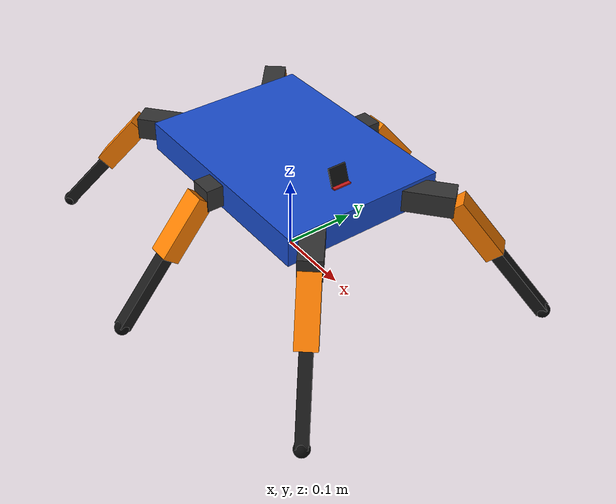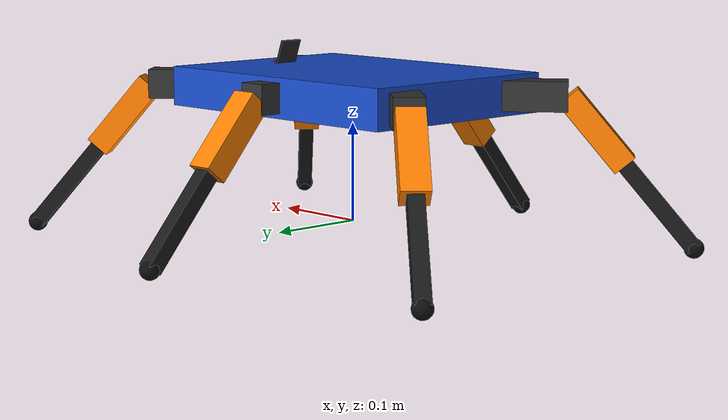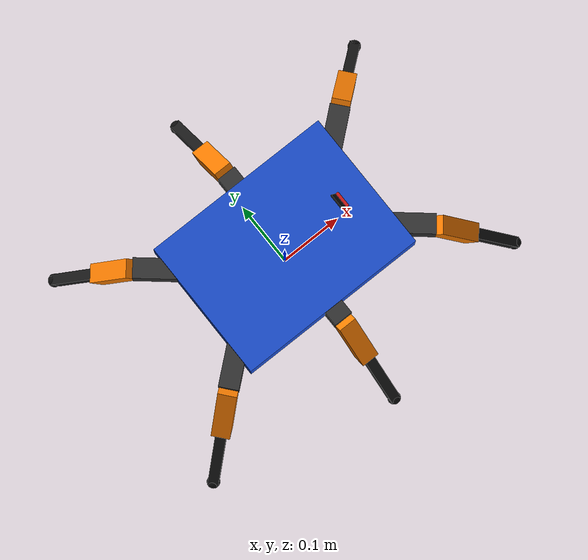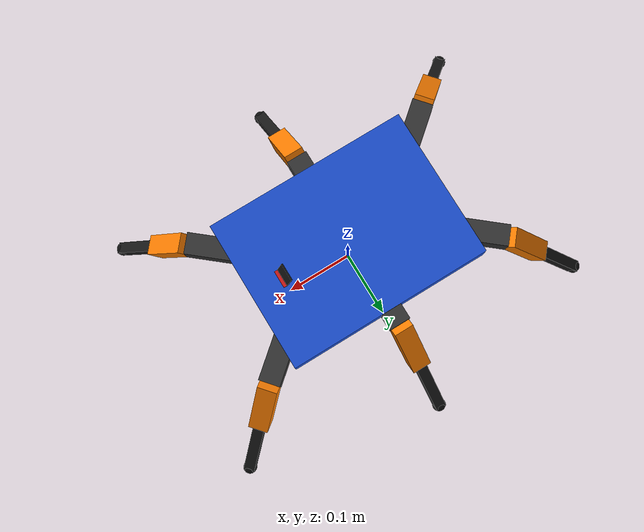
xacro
<?xml version="1.0"?>
<robot name="hexapod" xmlns:xacro="http://www.ros.org/wiki/xacro">

  <!-- Path to ros2_controllers.yaml, injected by the launch file so the
       gz_ros2_control plugin can find it at spawn time. -->
  <xacro:arg name="controllers_file" default=""/>
  <xacro:arg name="use_meshes" default="false"/>
  <!-- Set false for a plain URDF with no Gazebo / ros2_control tags. -->
  <xacro:arg name="simulation" default="true"/>

  <xacro:include filename="$(find hexapod_description)/urdf/common.xacro"/>
  <xacro:include filename="$(find hexapod_description)/urdf/leg.xacro"/>
  <xacro:include filename="$(find hexapod_description)/urdf/sensors.xacro"/>
  <xacro:include filename="$(find hexapod_description)/urdf/hexapod.ros2_control.xacro"/>

  <!-- ==================== body ==================== -->

  <!-- Massless root. Gazebo wants an inertia-free link at the root of a
       floating-base tree, otherwise the base picks up a phantom mass. -->
  <link name="base_footprint"/>

  <joint name="base_joint" type="fixed">
    <parent link="base_footprint"/>
    <child link="base_link"/>
    <origin xyz="0 0 ${body_height}" rpy="0 0 0"/>
  </joint>

  <link name="base_link">
    <visual>
      <origin xyz="0 0 0" rpy="0 0 0"/>
      <geometry>
        <xacro:if value="$(arg use_meshes)">
          <mesh filename="package://hexapod_description/meshes/body.stl" scale="0.001 0.001 0.001"/>
        </xacro:if>
        <xacro:unless value="$(arg use_meshes)">
          <box size="${body_length} ${body_width} ${body_thickness}"/>
        </xacro:unless>
      </geometry>
      <material name="chassis_blue"/>
    </visual>
    <collision>
      <origin xyz="0 0 0" rpy="0 0 0"/>
      <geometry>
        <box size="${body_length} ${body_width} ${body_thickness}"/>
      </geometry>
    </collision>
    <xacro:box_inertia m="${body_mass}"
                       x="${body_length}" y="${body_width}" z="${body_thickness}"/>
  </link>

  <xacro:leg prefix="fl" x="${ body_mount_x}" y="${ body_mount_y}" mount_yaw="${ radians(leg_splay_deg)}"/>
  <xacro:leg prefix="ml" x="${         0.0}" y="${ body_mount_y}" mount_yaw="${ radians(90)}"/>
  <xacro:leg prefix="rl" x="${-body_mount_x}" y="${ body_mount_y}" mount_yaw="${ radians(180 - leg_splay_deg)}"/>

  <xacro:leg prefix="fr" x="${ body_mount_x}" y="${-body_mount_y}" mount_yaw="${-radians(leg_splay_deg)}"/>
  <xacro:leg prefix="mr" x="${         0.0}" y="${-body_mount_y}" mount_yaw="${-radians(90)}"/>
  <xacro:leg prefix="rr" x="${-body_mount_x}" y="${-body_mount_y}" mount_yaw="${-radians(180 - leg_splay_deg)}"/>

  <!-- ==================== sensors ==================== -->

  <xacro:sensor_suite/>

  <!-- ==================== simulation plumbing ==================== -->

  <xacro:if value="$(arg simulation)">
    <xacro:hexapod_ros2_control controllers_file="$(arg controllers_file)"/>
    <xacro:gazebo_surfaces/>
  </xacro:if>

</robot>

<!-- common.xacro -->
<robot xmlns:xacro="http://www.ros.org/wiki/xacro">

  <!-- ========== body ========== -->
  <!-- Measured 2026-08-29 from HexapodV2.step (bounding box of HexapodMainBody). -->
  <xacro:property name="body_length"    value="0.300"/>
  <xacro:property name="body_width"     value="0.223"/>
  <xacro:property name="body_thickness" value="0.040"/>
  <xacro:property name="body_mass"      value="1.50"/>

  <!-- Ride height: ground to base_link origin. Not a direct CAD measurement -
       tune alongside gait.yaml's stance_drop once the gait is walking. -->
  <xacro:property name="body_height"    value="0.135"/>

  <xacro:property name="body_mount_x" value="0.137865"/>
  <xacro:property name="body_mount_y" value="0.066813"/>

  <xacro:property name="leg_splay_deg" value="40"/>

  <xacro:property name="coxa_length"  value="0.0675"/>
  <xacro:property name="femur_length" value="0.0875"/>
  <!-- Tia may add a small rubber foot stopper on top of this later - bump
       this up slightly if/when that happens. -->
  <xacro:property name="tibia_length" value="0.1075"/>

  <xacro:property name="coxa_tilt_deg" value="50"/>

  <xacro:property name="coxa_mass"  value="0.08"/>
  <xacro:property name="femur_mass" value="0.12"/>
  <xacro:property name="tibia_mass" value="0.10"/>

  <xacro:property name="coxa_width"      value="0.030"/>
  <xacro:property name="femur_width"     value="0.028"/>
  <xacro:property name="femur_height"    value="0.025"/>
  <xacro:property name="tibia_width"     value="0.016"/>
  <xacro:property name="foot_radius"     value="0.010"/>

  <xacro:property name="joint_effort"   value="45.0"/>
  <xacro:property name="joint_velocity" value="6.0"/>

  <xacro:property name="coxa_limit_lower"  value="-1.5708"/>  <!-- -90 deg -->
  <xacro:property name="coxa_limit_upper"  value=" 1.5708"/>  <!-- +90 deg -->
  <xacro:property name="femur_limit_lower" value="-0.5236"/>  <!-- -30 deg -->
  <xacro:property name="femur_limit_upper" value=" 2.0944"/>  <!-- +120 deg -->
  <xacro:property name="tibia_limit_lower" value="-2.6180"/>  <!-- -150 deg -->
  <xacro:property name="tibia_limit_upper" value=" 0.5236"/>  <!-- +30 deg -->

  <!-- ========== materials ========== -->
  <material name="chassis_blue"><color rgba="0.10 0.30 0.80 1.0"/></material>
  <material name="dark_grey"><color rgba="0.20 0.20 0.20 1.0"/></material>
  <material name="leg_orange"><color rgba="1.00 0.50 0.00 1.0"/></material>
  <material name="black"><color rgba="0.10 0.10 0.10 1.0"/></material>
  <material name="camera_red"><color rgba="0.80 0.10 0.10 1.0"/></material>
  <material name="rubber"><color rgba="0.05 0.05 0.05 1.0"/></material>

  <!-- ========== inertia helpers ==========
       The old hand-written inertia values were rough round numbers; these are
       computed from the actual box dimensions. Masses are unchanged. -->

  <!-- Solid box about its own centre. -->
  <xacro:macro name="box_inertia" params="m x y z">
    <inertial>
      <origin xyz="0 0 0" rpy="0 0 0"/>
      <mass value="${m}"/>
      <inertia ixx="${m*(y*y + z*z)/12.0}" ixy="0.0" ixz="0.0"
               iyy="${m*(x*x + z*z)/12.0}" iyz="0.0"
               izz="${m*(x*x + y*y)/12.0}"/>
    </inertial>
  </xacro:macro>

  <!-- Bar of length `len` lying along +X, centred at len/2 - the shape every
       leg segment uses. -->
  <xacro:macro name="bar_inertia" params="m len w h">
    <inertial>
      <origin xyz="${len/2.0} 0 0" rpy="0 0 0"/>
      <mass value="${m}"/>
      <inertia ixx="${m*(w*w + h*h)/12.0}" ixy="0.0" ixz="0.0"
               iyy="${m*(len*len + h*h)/12.0}" iyz="0.0"
               izz="${m*(len*len + w*w)/12.0}"/>
    </inertial>
  </xacro:macro>

</robot>

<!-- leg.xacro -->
<robot xmlns:xacro="http://www.ros.org/wiki/xacro">

  <xacro:macro name="leg" params="prefix x y mount_yaw">

    <!-- ========== coxa ========== -->
    <joint name="${prefix}_coxa_joint" type="revolute">
      <parent link="base_link"/>
      <child link="${prefix}_coxa_link"/>
      <origin xyz="${x} ${y} 0" rpy="0 0 ${mount_yaw}"/>
      <axis xyz="0 0 1"/>
      <limit lower="${coxa_limit_lower}" upper="${coxa_limit_upper}"
             effort="${joint_effort}" velocity="${joint_velocity}"/>
      <dynamics damping="0.1" friction="0.1"/>
    </joint>

    <link name="${prefix}_coxa_link">
      <visual>
        <origin xyz="${coxa_length/2} 0 0" rpy="0 0 0"/>
        <geometry>
          <xacro:if value="$(arg use_meshes)">
            <mesh filename="package://hexapod_description/meshes/coxa.stl" scale="0.001 0.001 0.001"/>
          </xacro:if>
          <xacro:unless value="$(arg use_meshes)">
            <box size="${coxa_length} ${coxa_width} ${coxa_width}"/>
          </xacro:unless>
        </geometry>
        <material name="dark_grey"/>
      </visual>
      <collision>
        <origin xyz="${coxa_length/2} 0 0" rpy="0 0 0"/>
        <geometry>
          <box size="${coxa_length} ${coxa_width} ${coxa_width}"/>
        </geometry>
      </collision>
      <xacro:bar_inertia m="${coxa_mass}" len="${coxa_length}"
                         w="${coxa_width}" h="${coxa_width}"/>
    </link>

    <!-- ========== femur ==========
         The 55 deg pitch on this origin is the mechanical tilt described above. -->
    <joint name="${prefix}_femur_joint" type="revolute">
      <parent link="${prefix}_coxa_link"/>
      <child link="${prefix}_femur_link"/>
      <origin xyz="${coxa_length} 0 0" rpy="0 ${radians(coxa_tilt_deg)} 0"/>
      <axis xyz="0 1 0"/>
      <limit lower="${femur_limit_lower}" upper="${femur_limit_upper}"
             effort="${joint_effort}" velocity="${joint_velocity}"/>
      <dynamics damping="0.1" friction="0.1"/>
    </joint>

    <link name="${prefix}_femur_link">
      <visual>
        <origin xyz="${femur_length/2} 0 0" rpy="0 0 0"/>
        <geometry>
          <xacro:if value="$(arg use_meshes)">
            <mesh filename="package://hexapod_description/meshes/femur.stl" scale="0.001 0.001 0.001"/>
          </xacro:if>
          <xacro:unless value="$(arg use_meshes)">
            <box size="${femur_length} ${femur_width} ${femur_height}"/>
          </xacro:unless>
        </geometry>
        <material name="leg_orange"/>
      </visual>
      <collision>
        <origin xyz="${femur_length/2} 0 0" rpy="0 0 0"/>
        <geometry>
          <box size="${femur_length} ${femur_width} ${femur_height}"/>
        </geometry>
      </collision>
      <xacro:bar_inertia m="${femur_mass}" len="${femur_length}"
                         w="${femur_width}" h="${femur_height}"/>
    </link>

    <joint name="${prefix}_tibia_joint" type="revolute">
      <parent link="${prefix}_femur_link"/>
      <child link="${prefix}_tibia_link"/>
      <origin xyz="${femur_length} 0 0" rpy="0 0 0"/>
      <axis xyz="0 1 0"/>
      <limit lower="${tibia_limit_lower}" upper="${tibia_limit_upper}"
             effort="${joint_effort}" velocity="${joint_velocity}"/>
      <dynamics damping="0.1" friction="0.1"/>
    </joint>

    <link name="${prefix}_tibia_link">
      <visual>
        <origin xyz="${tibia_length/2} 0 0" rpy="0 0 0"/>
        <geometry>
          <xacro:if value="$(arg use_meshes)">
            <mesh filename="package://hexapod_description/meshes/tibia.stl" scale="0.001 0.001 0.001"/>
          </xacro:if>
          <xacro:unless value="$(arg use_meshes)">
            <box size="${tibia_length} ${tibia_width} ${tibia_width}"/>
          </xacro:unless>
        </geometry>
        <material name="black"/>
      </visual>
      <collision>
        <origin xyz="${tibia_length/2} 0 0" rpy="0 0 0"/>
        <geometry>
          <box size="${tibia_length} ${tibia_width} ${tibia_width}"/>
        </geometry>
      </collision>
      <xacro:bar_inertia m="${tibia_mass}" len="${tibia_length}"
                         w="${tibia_width}" h="${tibia_width}"/>
    </link>

    <joint name="${prefix}_foot_joint" type="fixed">
      <parent link="${prefix}_tibia_link"/>
      <child link="${prefix}_foot_link"/>
      <origin xyz="${tibia_length} 0 0" rpy="0 0 0"/>
    </joint>

    <link name="${prefix}_foot_link">
      <visual>
        <geometry><sphere radius="${foot_radius}"/></geometry>
        <material name="rubber"/>
      </visual>
      <collision>
        <geometry><sphere radius="${foot_radius}"/></geometry>
      </collision>
      <inertial>
        <mass value="0.01"/>
        <inertia ixx="1e-6" ixy="0" ixz="0" iyy="1e-6" iyz="0" izz="1e-6"/>
      </inertial>
    </link>

  </xacro:macro>

</robot>

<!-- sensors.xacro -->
<robot xmlns:xacro="http://www.ros.org/wiki/xacro">

  <xacro:macro name="sensor_suite">

    <!-- ==================== Pi Camera v1, front-centre ==================== -->

    <joint name="camera_joint" type="fixed">
      <parent link="base_link"/>
      <child link="camera_link"/>
      <origin xyz="0.105 0 0.01" rpy="0 0 0"/>
    </joint>

    <link name="camera_link">
      <visual>
        <geometry><box size="0.005 0.025 0.024"/></geometry>
        <material name="camera_red"/>
      </visual>
      <collision>
        <geometry><box size="0.005 0.025 0.024"/></geometry>
      </collision>
      <inertial>
        <mass value="0.01"/>
        <inertia ixx="1e-6" ixy="0" ixz="0" iyy="1e-6" iyz="0" izz="1e-6"/>
      </inertial>
    </link>

    <!-- REP-103 optical frame: z forward, x right, y down. Vision code expects
         this; camera_link itself uses the robot convention (x forward). -->
    <joint name="camera_optical_joint" type="fixed">
      <parent link="camera_link"/>
      <child link="camera_link_optical"/>
      <origin xyz="0 0 0" rpy="${-pi/2} 0 ${-pi/2}"/>
    </joint>
    <link name="camera_link_optical"/>

    <gazebo reference="camera_link">
      <sensor name="pi_camera" type="camera">
        <topic>camera/image_raw</topic>
        <gz_frame_id>camera_link_optical</gz_frame_id>
        <update_rate>30</update_rate>
        <always_on>true</always_on>
        <visualize>false</visualize>
        <camera>
          <!-- 0.935 rad = 53.6 deg, the Pi Camera v1 horizontal FOV. -->
          <horizontal_fov>0.935</horizontal_fov>
          <image>
            <width>640</width>
            <height>480</height>
            <format>R8G8B8</format>
          </image>
          <clip>
            <near>0.02</near>
            <far>300</far>
          </clip>
          <noise>
            <type>gaussian</type>
            <mean>0.0</mean>
            <stddev>0.005</stddev>
          </noise>
        </camera>
      </sensor>
    </gazebo>

    <!-- ==================== IMU, body centre ==================== -->

    <joint name="imu_joint" type="fixed">
      <parent link="base_link"/>
      <child link="imu_link"/>
      <origin xyz="0 0 0" rpy="0 0 0"/>
    </joint>

    <link name="imu_link">
      <inertial>
        <mass value="0.005"/>
        <inertia ixx="1e-7" ixy="0" ixz="0" iyy="1e-7" iyz="0" izz="1e-7"/>
      </inertial>
    </link>

    <gazebo reference="imu_link">
      <sensor name="imu_sensor" type="imu">
        <topic>imu</topic>
        <gz_frame_id>imu_link</gz_frame_id>
        <update_rate>100</update_rate>
        <always_on>true</always_on>
        <imu>
          <angular_velocity>
            <x><noise type="gaussian"><mean>0.0</mean><stddev>2e-4</stddev></noise></x>
            <y><noise type="gaussian"><mean>0.0</mean><stddev>2e-4</stddev></noise></y>
            <z><noise type="gaussian"><mean>0.0</mean><stddev>2e-4</stddev></noise></z>
          </angular_velocity>
          <linear_acceleration>
            <x><noise type="gaussian"><mean>0.0</mean><stddev>1.7e-2</stddev></noise></x>
            <y><noise type="gaussian"><mean>0.0</mean><stddev>1.7e-2</stddev></noise></y>
            <z><noise type="gaussian"><mean>0.0</mean><stddev>1.7e-2</stddev></noise></z>
          </linear_acceleration>
        </imu>
      </sensor>
    </gazebo>

    <joint name="face_joint" type="fixed">
      <parent link="base_link"/>
      <child link="face_link"/>
      <origin xyz="0.098 0 0.032" rpy="0 ${radians(-20)} 0"/>
    </joint>

    <link name="face_link">
      <visual>
        <!-- 1 inch square, tilted up 20 deg so it faces a standing human. -->
        <geometry><box size="0.002 0.0254 0.0254"/></geometry>
        <material name="black"/>
      </visual>
      <inertial>
        <mass value="0.005"/>
        <inertia ixx="1e-7" ixy="0" ixz="0" iyy="1e-7" iyz="0" izz="1e-7"/>
      </inertial>
    </link>

  </xacro:macro>

  <xacro:macro name="gazebo_surfaces">

    <xacro:macro name="foot_surface" params="prefix">
      <gazebo reference="${prefix}_foot_link">
        <mu1>1.6</mu1>
        <mu2>1.6</mu2>
        <kp>1000000.0</kp>
        <kd>100.0</kd>
        <minDepth>0.001</minDepth>
      </gazebo>
    </xacro:macro>

    <xacro:foot_surface prefix="fl"/>
    <xacro:foot_surface prefix="ml"/>
    <xacro:foot_surface prefix="rl"/>
    <xacro:foot_surface prefix="fr"/>
    <xacro:foot_surface prefix="mr"/>
    <xacro:foot_surface prefix="rr"/>

    <gazebo reference="base_link">
      <mu1>0.3</mu1>
      <mu2>0.3</mu2>
    </gazebo>

  </xacro:macro>

</robot>
